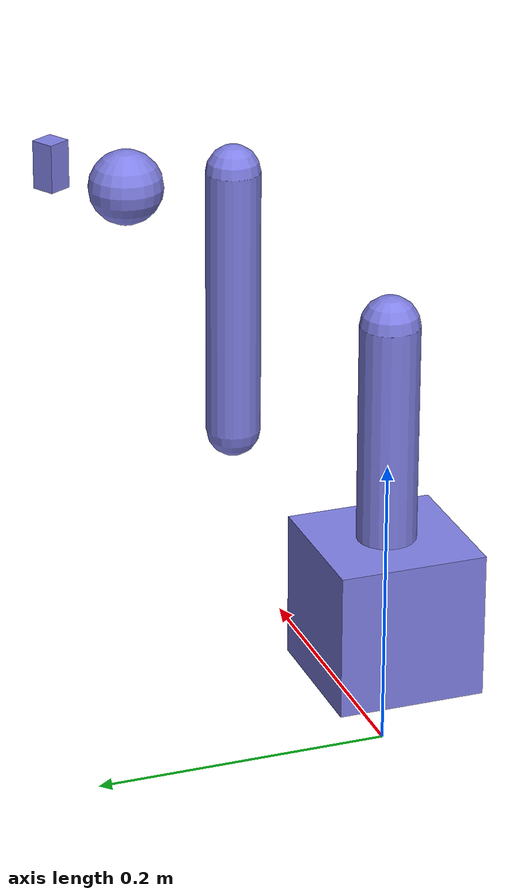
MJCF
<mujoco model="mjcf_arm">
  <compiler angle="degree" eulerseq="xyz"/>

  <default>
    <joint type="hinge" axis="0 0 1" range="-90 90"/>
    <geom type="capsule" size="0.02 0.1" rgba="0.5 0.5 0.9 1"/>
    <default class="wrist">
      <joint range="-45 45"/>
      <geom type="sphere" size="0.03"/>
    </default>
    <default class="collision">
      <geom type="box" size="0.06 0.06 0.06" group="3"/>
    </default>
  </default>

  <worldbody>
    <body name="base" pos="0 0 0.1">
      <geom name="base_geom" type="box" size="0.05 0.05 0.05"/>
      <geom name="base_collision" class="collision"/>

      <body name="shoulder" pos="0 0 0.1">
        <joint name="j1" axis="0 0 1"/>
        <geom name="shoulder_geom"/>

        <body name="upper" pos="0.3 0 0">
          <!-- Joint pivot offset back along the link. This is the case that
               breaks naive readers: URDF has no equivalent offset, so the
               body frame must be restored after the pivot. -->
          <joint name="j2" pos="-0.3 0 0" axis="0 1 0" range="-120 120"/>
          <geom name="upper_geom"/>

          <body name="wrist" pos="0.25 0 0" euler="0 0 30">
            <!-- Two joints on one body: a 2-DoF wrist. -->
            <joint name="j3" axis="0 1 0" class="wrist"/>
            <joint name="j4" axis="1 0 0" class="wrist"/>
            <geom name="wrist_geom" class="wrist"/>

            <body name="tool" pos="0.08 0 0">
              <!-- No joint: welded to the wrist. -->
              <geom name="tool_geom" type="box" size="0.01 0.01 0.02"/>
              <!-- Group written straight on the geom, the other way it is
                   done, and a shape the visual does not use. -->
              <geom name="tool_collision" type="sphere" size="0.04" group="3"/>
            </body>
          </body>
        </body>
      </body>
    </body>
  </worldbody>
</mujoco>
